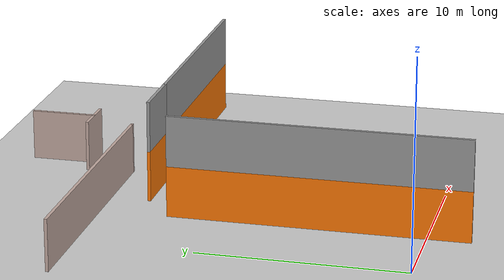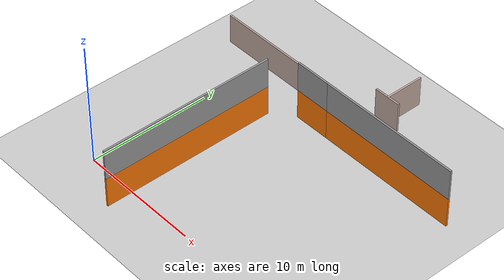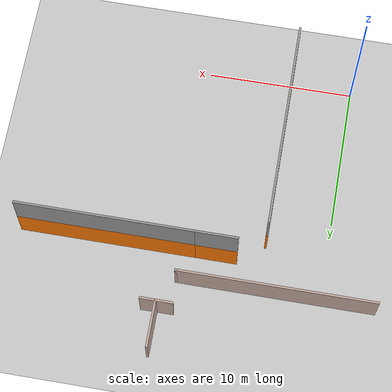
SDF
<sdf version="1.7">
 <world name="default">
  <model name="ground_plane">
   <static>1</static>
   <link name="link">
    <collision name="collision">
     <geometry><plane><normal>0 0 1</normal><size>100 100</size></plane></geometry>
     <surface><friction><ode><mu>100</mu><mu2>50</mu2></ode></friction></surface>
    </collision>
    <visual name="visual">
     <cast_shadows>0</cast_shadows>
     <geometry><plane><normal>0 0 1</normal><size>100 100</size></plane></geometry>
     <material>
      <script><uri>file://media/materials/scripts/gazebo.material</uri><name>Gazebo/Grey</name></script>
     </material>
    </visual>
   </link>
  </model>
  <model name="AKW_0">
   <pose>0.482897 -0.466564 0 0 -0 0</pose>
   <link name="Wall_118">
    <collision name="Wall_118_Collision">
     <geometry><box><size>14.5 0.15 2.5</size></box></geometry>
     <pose>0 0 1.25 0 -0 0</pose>
    </collision>
    <visual name="Wall_118_Visual">
     <pose>0 0 1.25 0 -0 0</pose>
     <geometry><box><size>14.5 0.15 2.5</size></box></geometry>
     <material>
      <script><uri>file://media/materials/scripts/gazebo.material</uri><name>Gazebo/Grey</name></script>
      <ambient>0.996078 0.47451 0.0196078 1</ambient>
     </material>
     <meta><layer>0</layer></meta>
    </visual>
    <pose>3.74669 5.6278 0 0 -0 -1.5708</pose>
   </link>
   <link name="Wall_132">
    <collision name="Wall_132_Collision">
     <geometry><box><size>12 0.15 2.5</size></box></geometry>
     <pose>0 0 1.25 0 -0 0</pose>
    </collision>
    <visual name="Wall_132_Visual">
     <pose>0 0 1.25 0 -0 0</pose>
     <geometry><box><size>12 0.15 2.5</size></box></geometry>
     <material>
      <script><uri>file://media/materials/scripts/gazebo.material</uri><name>Gazebo/Grey</name></script>
      <ambient>0.996078 0.47451 0.0196078 1</ambient>
     </material>
     <meta><layer>0</layer></meta>
    </visual>
    <pose>14.3298 14.2447 0 0 -0 3.14159</pose>
   </link>
   <link name="Wall_133">
    <collision name="Wall_133_Collision">
     <geometry><box><size>3 0.15 2.5</size></box></geometry>
     <pose>0 0 1.25 0 -0 0</pose>
    </collision>
    <visual name="Wall_133_Visual">
     <pose>0 0 1.25 0 -0 0</pose>
     <geometry><box><size>3 0.15 2.5</size></box></geometry>
     <material>
      <script><uri>file://media/materials/scripts/gazebo.material</uri><name>Gazebo/Grey</name></script>
      <ambient>0.996078 0.47451 0.0196078 1</ambient>
     </material>
     <meta><layer>0</layer></meta>
    </visual>
    <pose>6.97983 14.2447 0 0 -0 3.14159</pose>
   </link>
   <link name="Wall_296">
    <collision name="Wall_296_Collision">
     <geometry><box><size>14.5 0.15 2.5</size></box></geometry>
     <pose>0 0 1.25 0 -0 0</pose>
    </collision>
    <visual name="Wall_296_Visual">
     <pose>0 0 1.25 0 -0 0</pose>
     <geometry><box><size>14.5 0.15 2.5</size></box></geometry>
     <material>
      <script><uri>file://media/materials/scripts/gazebo.material</uri><name>Gazebo/Grey</name></script>
      <ambient>1 1 1 1</ambient>
     </material>
     <meta><layer>1</layer></meta>
    </visual>
    <pose>3.74669 5.6278 2.5 0 -0 -1.5708</pose>
   </link>
   <link name="Wall_309">
    <collision name="Wall_309_Collision">
     <geometry><box><size>12 0.15 2.5</size></box></geometry>
     <pose>0 0 1.25 0 -0 0</pose>
    </collision>
    <visual name="Wall_309_Visual">
     <pose>0 0 1.25 0 -0 0</pose>
     <geometry><box><size>12 0.15 2.5</size></box></geometry>
     <material>
      <script><uri>file://media/materials/scripts/gazebo.material</uri><name>Gazebo/Grey</name></script>
      <ambient>1 1 1 1</ambient>
     </material>
     <meta><layer>1</layer></meta>
    </visual>
    <pose>14.3298 14.2447 2.5 0 -0 3.14159</pose>
   </link>
   <link name="Wall_310">
    <collision name="Wall_310_Collision">
     <geometry><box><size>3 0.15 2.5</size></box></geometry>
     <pose>0 0 1.25 0 -0 0</pose>
    </collision>
    <visual name="Wall_310_Visual">
     <pose>0 0 1.25 0 -0 0</pose>
     <geometry><box><size>3 0.15 2.5</size></box></geometry>
     <material>
      <script><uri>file://media/materials/scripts/gazebo.material</uri><name>Gazebo/Grey</name></script>
      <ambient>1 1 1 1</ambient>
     </material>
     <meta><layer>1</layer></meta>
    </visual>
    <pose>6.97983 14.2447 2.5 0 -0 3.14159</pose>
   </link>
   <link name="Wall_41">
    <collision name="Wall_41_Collision">
     <geometry><box><size>13.5 0.15 2.5</size></box></geometry>
     <pose>0 0 1.25 0 -0 0</pose>
    </collision>
    <visual name="Wall_41_Visual">
     <pose>0 0 1.25 0 -0 0</pose>
     <geometry><box><size>13.5 0.15 2.5</size></box></geometry>
     <material>
      <script><uri>file://media/materials/scripts/gazebo.material</uri><name>Gazebo/Grey</name></script>
      <ambient>0.760784 0.662745 0.627451 1</ambient>
     </material>
     <meta><layer>0</layer></meta>
    </visual>
    <pose>2.59697 16.2064 0 0 -0 0</pose>
   </link>
   <link name="Wall_42">
    <collision name="Wall_42_Collision">
     <geometry><box><size>0.16 0.15 2.5</size></box></geometry>
     <pose>0 0 1.25 0 -0 0</pose>
    </collision>
    <visual name="Wall_42_Visual">
     <pose>0 0 1.25 0 -0 0</pose>
     <geometry><box><size>0.16 0.15 2.5</size></box></geometry>
     <material>
      <script><uri>file://media/materials/scripts/gazebo.material</uri><name>Gazebo/Grey</name></script>
      <ambient>0.760784 0.662745 0.627451 1</ambient>
     </material>
     <meta><layer>0</layer></meta>
    </visual>
    <pose>9.27697 16.2064 0 0 -0 0</pose>
   </link>
   <link name="Wall_46">
    <collision name="Wall_46_Collision">
     <geometry><box><size>3.25 0.15 2.5</size></box></geometry>
     <pose>0 0 1.25 0 -0 0</pose>
    </collision>
    <visual name="Wall_46_Visual">
     <pose>0 0 1.25 0 -0 0</pose>
     <geometry><box><size>3.25 0.15 2.5</size></box></geometry>
     <material>
      <script><uri>file://media/materials/scripts/gazebo.material</uri><name>Gazebo/Grey</name></script>
      <ambient>0.760784 0.662745 0.627451 1</ambient>
     </material>
     <meta><layer>0</layer></meta>
    </visual>
    <pose>10.2248 20.0333 0 0 -0 -1.5708</pose>
   </link>
   <link name="Wall_48">
    <collision name="Wall_48_Collision">
     <geometry><box><size>2.25 0.15 2.5</size></box></geometry>
     <pose>0 0 1.25 0 -0 0</pose>
    </collision>
    <visual name="Wall_48_Visual">
     <pose>0 0 1.25 0 -0 0</pose>
     <geometry><box><size>2.25 0.15 2.5</size></box></geometry>
     <material>
      <script><uri>file://media/materials/scripts/gazebo.material</uri><name>Gazebo/Grey</name></script>
      <ambient>0.760784 0.662745 0.627451 1</ambient>
     </material>
     <meta><layer>0</layer></meta>
    </visual>
    <pose>10.1726 18.4646 0 0 -0 0</pose>
   </link>
   <static>1</static>
  </model>
 </world>
</sdf>
